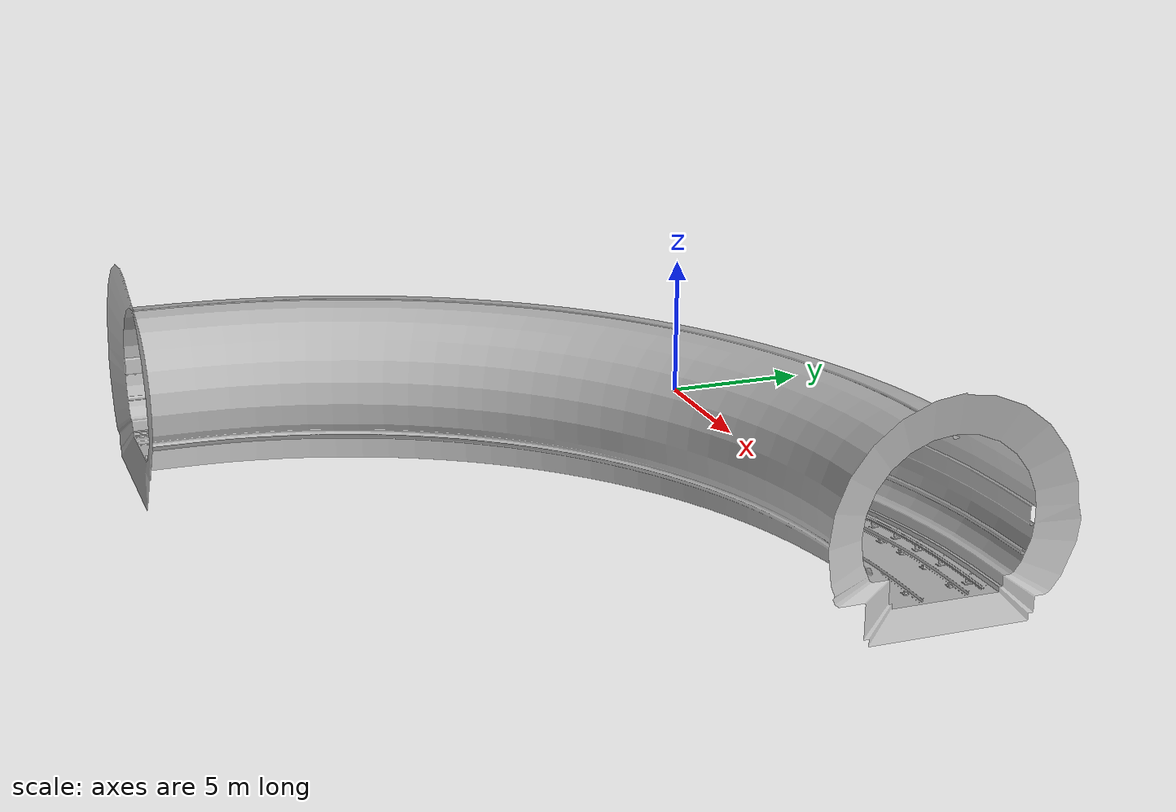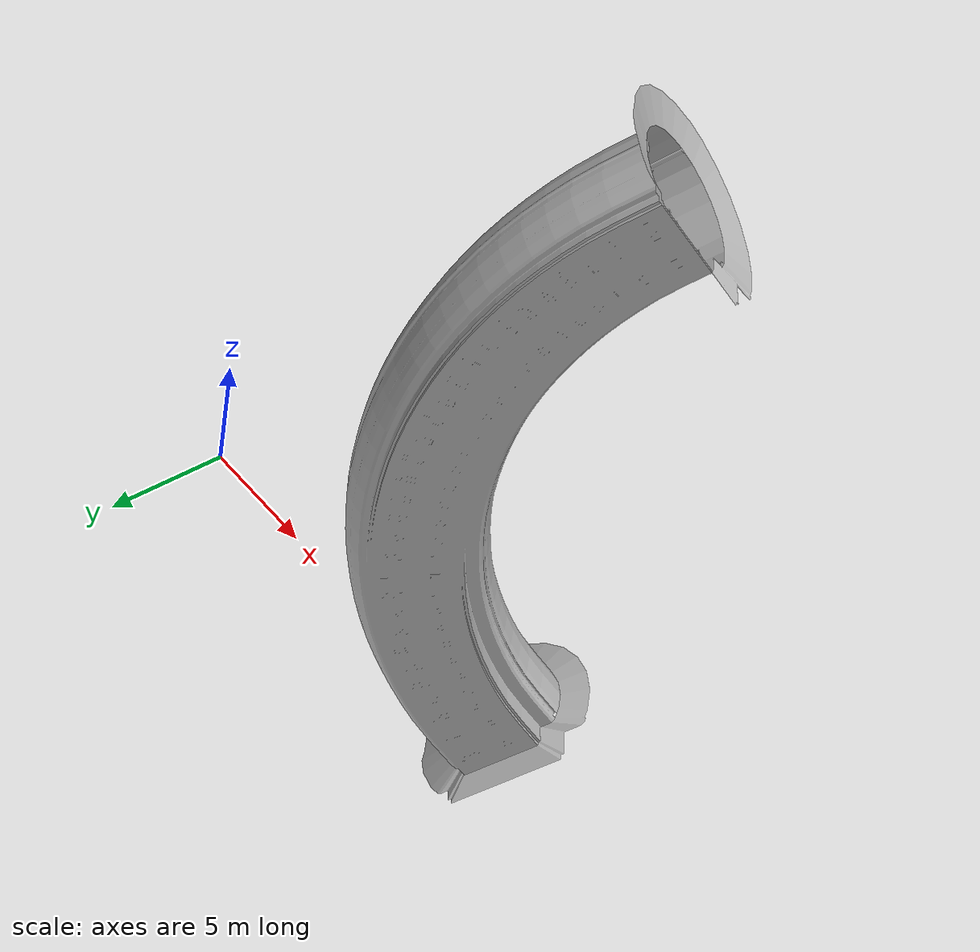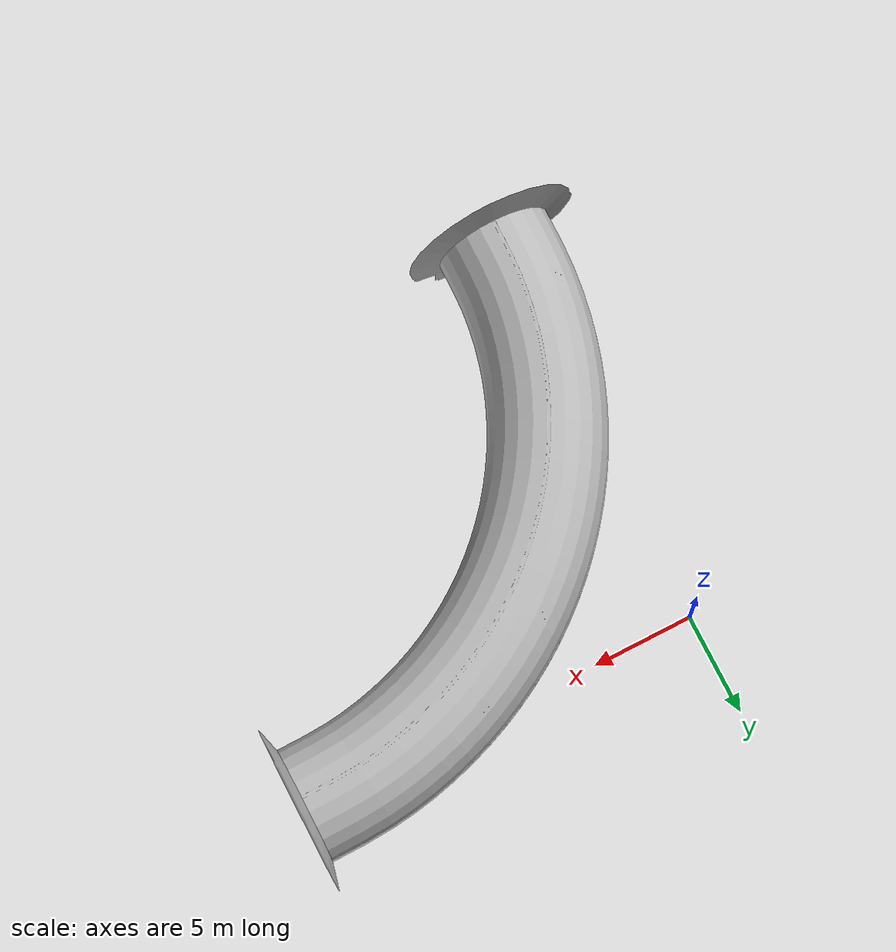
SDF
<?xml version="1.0" ?>
<sdf version="1.6">
  <model name="Urban Bend Right">
       <pose>0 0 0 0 0 0</pose>
   <static>true</static>
   <link name="link">
     <collision name="collision">
       <geometry>
         <mesh>
          <uri>model://Urban Bend Right/meshes/bend_right.dae</uri>
        </mesh>
       </geometry>
     </collision>
     <visual name="visual">
       <geometry>
         <mesh>
          <uri>model://Urban Bend Right/meshes/bend_right.dae</uri>
        </mesh>
       </geometry>
     </visual>
   </link>
 </model>
</sdf>
